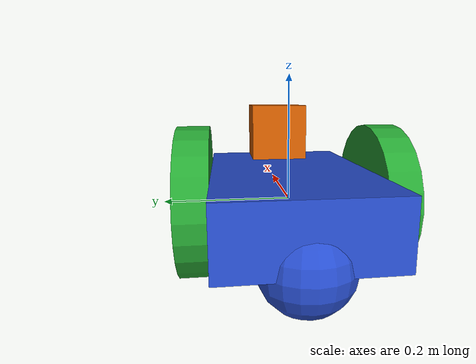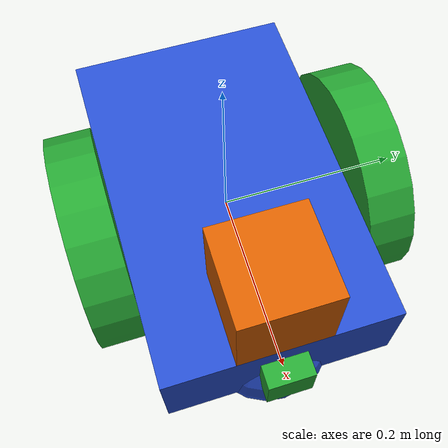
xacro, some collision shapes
<?xml version='1.0'?>

<robot name="my_robot" xmlns:xacro="http://www.ros.org/wiki/xacro">
  <xacro:include filename="$(find my_robot)/urdf/my_robot.gazebo" />
  <link name="robot_footprint"></link>

  <joint name="robot_footprint_joint" type="fixed">
    <origin xyz="0 0 0" rpy="0 0 0" />
    <parent link="robot_footprint"/>
    <child link="chassis" />
  </joint>

  <link name='chassis'>
    <pose>0 0 0.1 0 0 0</pose>

    <inertial>
      <mass value="15.0"/>
      <origin xyz="0.0 0 0" rpy=" 0 0 0"/>
      <inertia
          ixx="0.1" ixy="0" ixz="0"
          iyy="0.1" iyz="0"
          izz="0.1"
      />
    </inertial>

    <collision name='collision'>
      <origin xyz="0 0 0" rpy=" 0 0 0"/>
      <geometry>
        <box size="0.4 0.25 0.1"/>
      </geometry>
    </collision>

    <visual name='chassis_visual'>
      <origin xyz="0 0 0" rpy=" 0 0 0"/>
      <geometry>
        <box size="0.4 .25 .1"/>
      </geometry>
    </visual>

    <collision name='back_caster_collision'>
      <origin xyz="-0.15 0 -0.05" rpy=" 0 0 0"/>
      <geometry>
        <sphere radius="0.0699"/>
      </geometry>
    </collision>

    <visual name='back_caster_visual'>
      <origin xyz="-0.15 0 -0.05" rpy=" 0 0 0"/>
      <geometry>
        <sphere radius="0.07"/>
      </geometry>
    </visual>

    <collision name='front_caster_collision'>
      <origin xyz="0.15 0 -0.05" rpy=" 0 0 0"/>
      <geometry>
        <sphere radius="0.0699"/>
      </geometry>
    </collision>

    <visual name='front_caster_visual'>
      <origin xyz="0.15 0 -0.05" rpy=" 0 0 0"/>
      <geometry>
        <sphere radius="0.07"/>
      </geometry>
    </visual>

  </link>
  <link name='left_wheel'>
      <inertial>
        <mass value="5.0"/>
        <origin xyz="0 0 0" rpy="0 1.5707 1.5707"/>
      <inertia
          ixx="0.1" ixy="0" ixz="0"
          iyy="0.1" iyz="0"
          izz="0.1"
      />
      </inertial>
    <visual name='left_wheel_visual'>
      <origin xyz="0 0 0" rpy="0 1.5707 1.5707"/>
      <geometry>
        <cylinder radius="0.12" length="0.05"/>
      </geometry>
    </visual>
    <collision name='left_wheel_collision'>
      <origin xyz="0 0 0" rpy="0 1.5707 1.5707"/>
      <geometry>
        <cylinder radius="0.12" length="0.05"/>
      </geometry>
    </collision>
  </link>
  <link name='right_wheel'>

      <inertial>
        <mass value="5.0"/>
        <origin xyz="0 0 0" rpy="0 1.5707 1.5707"/>
      <inertia
          ixx="0.1" ixy="0" ixz="0"
          iyy="0.1" iyz="0"
          izz="0.1"
      />
      </inertial>
    <visual name='right_wheel_visual'>
      <origin xyz="0 0 0" rpy="0 1.5707 1.5707"/>
      <geometry>
        <cylinder radius="0.12" length="0.05"/>
      </geometry>
    </visual>
    <collision name='right_wheel_collision'>
      <origin xyz="0 0 0" rpy="0 1.5707 1.5707"/>
      <geometry>
        <cylinder radius="0.12" length="0.05"/>
      </geometry>
    </collision>
  </link>

 <link name='camera'>
    <pose>0 0 0 0 0 0</pose>
    <inertial>
      <mass value="0.1"/>
      <origin xyz="0.0 0 0" rpy=" 0 0 0"/>
      <inertia
          ixx="1e-6" ixy="0" ixz="0" iyy="1e-6" iyz="0" izz="1e-6"
      />
    </inertial>
    <collision name='camera_collision'>
      <origin xyz="0 0 0" rpy=" 0 0 0"/>
      <geometry>
        <box size="0.05 0.05 0.05"/>
      </geometry>
    </collision>
    <visual name='camera_visual'>
      <origin xyz="0 0 0" rpy=" 0 0 0"/>
      <geometry>
        <box size="0.05 0.05 0.05"/>
      </geometry>
    </visual>
 </link>

  <joint name="camera_joint" type="fixed">
  <origin xyz="0.2 0 0" rpy="0 0 0" />
  <parent link="chassis"/>
  <child link="camera" />
  <axis xyz="0 1 0" rpy="0 0 0"/>
  </joint>

  <link name='hokuyo'>
    <pose>0 0 0 0 0 0</pose>
    <inertial>
      <mass value="1e-5"/>
      <origin xyz="0.0 0 0" rpy=" 0 0 0"/>
      <inertia
          ixx="1e-6" ixy="0" ixz="0" iyy="1e-6" iyz="0" izz="1e-6"
      />
    </inertial>

    <collision name='hokuyo_collision'>
      <origin xyz="0 0 0" rpy=" 0 0 0"/>
      <geometry>
        <box size="0.1 0.1 0.1"/>
      </geometry>
    </collision>

    <visual name='hokuyo_visual'>
      <origin xyz="0 0 0" rpy=" 0 0 0"/>
      <geometry>
        <mesh filename="package://my_robot/meshes/hokuyo.dae"/>
      </geometry>
    </visual>
  </link>

  <joint name="hokuyo_joint" type="fixed">
  <origin xyz="0.15 0 0.1" rpy="0 0 0" />
  <parent link="chassis"/>
  <child link="hokuyo" />
  <axis xyz="0 1 0" rpy="0 0 0"/>
  </joint>

  <joint type="continuous" name="left_wheel_hinge">
    <origin xyz="0 0.15 0" rpy="0 0 0"/>
    <child link="left_wheel"/>
    <parent link="chassis"/>
    <axis xyz="0 1 0" rpy="0 0 0"/>
    <limit effort="10000" velocity="1000"/>
    <dynamics damping="1.0" friction="1.0"/>
  </joint>
  <joint type="continuous" name="right_wheel_hinge">
    <origin xyz="0 -0.15 0" rpy="0 0 0"/>
    <child link="right_wheel"/>
    <parent link="chassis"/>
    <axis xyz="0 1 0" rpy="0 0 0"/>
    <limit effort="10000" velocity="1000"/>
    <dynamics damping="1.0" friction="1.0"/>
  </joint>

  <gazebo reference="chassis">
    <material>Gazebo/Blue</material>
  </gazebo>

  <gazebo reference="left_wheel">
    <material>Gazebo/Green</material>
  </gazebo>

  <gazebo reference="right_wheel">
    <material>Gazebo/Green</material>
  </gazebo>

  <gazebo reference="camera">
    <material>Gazebo/Green</material>
  </gazebo>

</robot>
